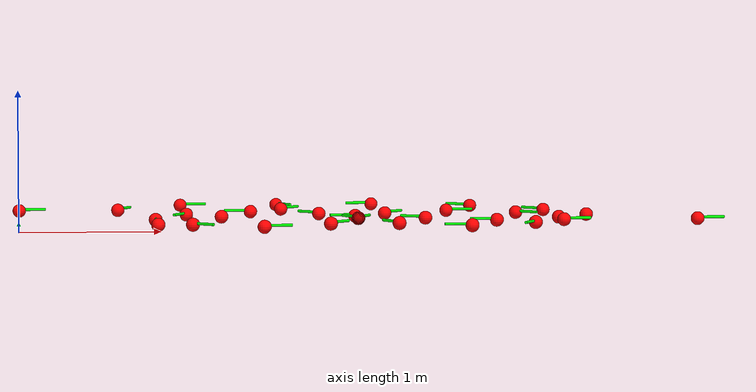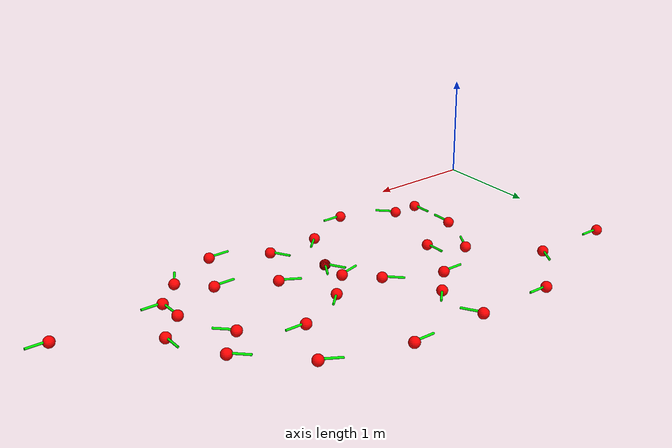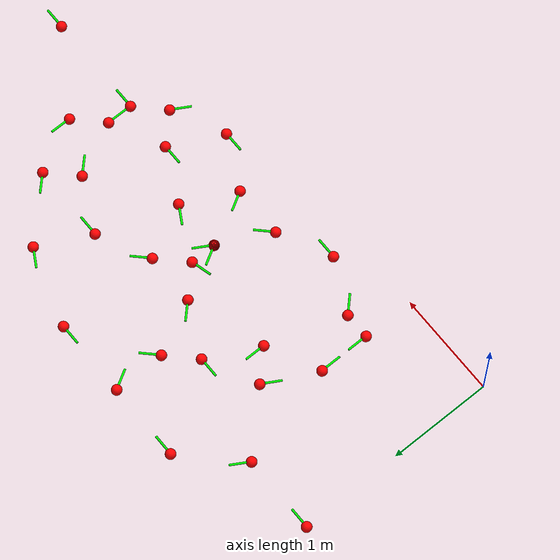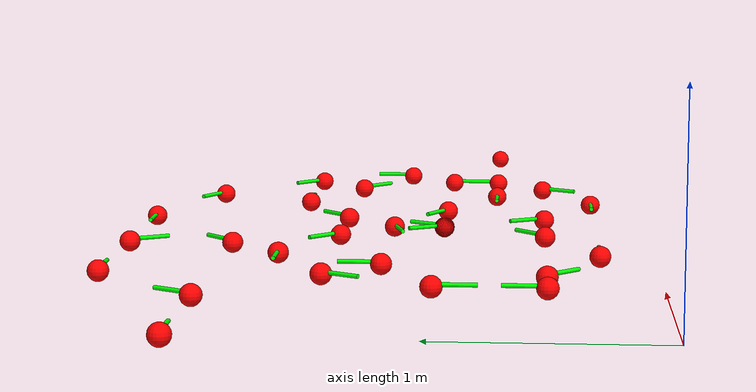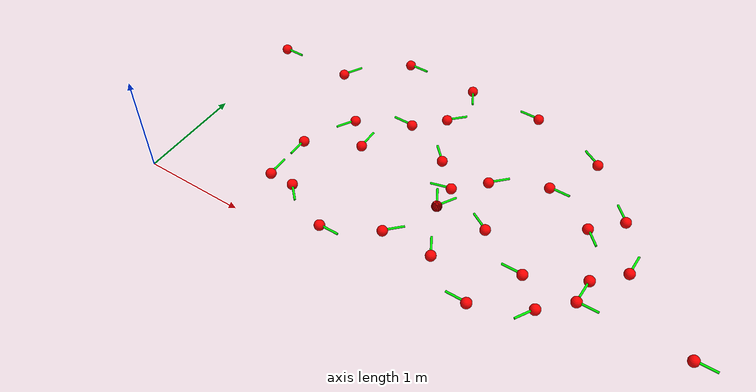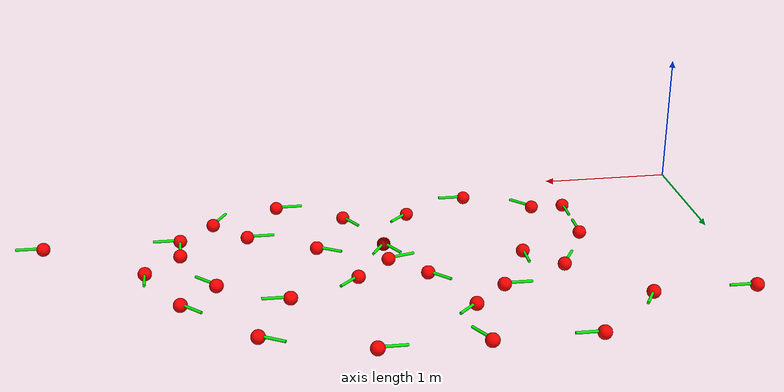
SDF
<?xml version="1.0" ?>
<sdf version="1.6">
  <model name="path_waypoints">
    <static>true</static>

    <link name="waypoint_0">
      <pose>1.0 1.0 0.01 0 0 -1.5707963267948966</pose>
      <visual name="dot">
        <geometry><sphere><radius>0.05</radius></sphere></geometry>
        <material>
          <ambient>1 0 0 1</ambient>
          <diffuse>1 0 0 1</diffuse>
        </material>
      </visual>
      <visual name="arrow">
        <pose>0.1 0 0.01 0 1.5707 0</pose>
        <geometry><cylinder><radius>0.01</radius><length>0.2</length></cylinder></geometry>
        <material>
          <ambient>0 1 0 1</ambient>
          <diffuse>0 1 0 1</diffuse>
        </material>
      </visual>
    </link>
    <link name="waypoint_1">
      <pose>1.25 0.5 0.01 0 0 -0.7853981633974483</pose>
      <visual name="dot">
        <geometry><sphere><radius>0.05</radius></sphere></geometry>
        <material>
          <ambient>1 0 0 1</ambient>
          <diffuse>1 0 0 1</diffuse>
        </material>
      </visual>
      <visual name="arrow">
        <pose>0.1 0 0.01 0 1.5707 0</pose>
        <geometry><cylinder><radius>0.01</radius><length>0.2</length></cylinder></geometry>
        <material>
          <ambient>0 1 0 1</ambient>
          <diffuse>0 1 0 1</diffuse>
        </material>
      </visual>
    </link>
    <link name="waypoint_2">
      <pose>1.75 0.25 0.01 0 0 0.0</pose>
      <visual name="dot">
        <geometry><sphere><radius>0.05</radius></sphere></geometry>
        <material>
          <ambient>1 0 0 1</ambient>
          <diffuse>1 0 0 1</diffuse>
        </material>
      </visual>
      <visual name="arrow">
        <pose>0.1 0 0.01 0 1.5707 0</pose>
        <geometry><cylinder><radius>0.01</radius><length>0.2</length></cylinder></geometry>
        <material>
          <ambient>0 1 0 1</ambient>
          <diffuse>0 1 0 1</diffuse>
        </material>
      </visual>
    </link>
    <link name="waypoint_3">
      <pose>2.25 0.5 0.01 0 0 0.7853981633974483</pose>
      <visual name="dot">
        <geometry><sphere><radius>0.05</radius></sphere></geometry>
        <material>
          <ambient>1 0 0 1</ambient>
          <diffuse>1 0 0 1</diffuse>
        </material>
      </visual>
      <visual name="arrow">
        <pose>0.1 0 0.01 0 1.5707 0</pose>
        <geometry><cylinder><radius>0.01</radius><length>0.2</length></cylinder></geometry>
        <material>
          <ambient>0 1 0 1</ambient>
          <diffuse>0 1 0 1</diffuse>
        </material>
      </visual>
    </link>
    <link name="waypoint_4">
      <pose>2.5 1.0 0.01 0 0 1.0471975511965976</pose>
      <visual name="dot">
        <geometry><sphere><radius>0.05</radius></sphere></geometry>
        <material>
          <ambient>1 0 0 1</ambient>
          <diffuse>1 0 0 1</diffuse>
        </material>
      </visual>
      <visual name="arrow">
        <pose>0.1 0 0.01 0 1.5707 0</pose>
        <geometry><cylinder><radius>0.01</radius><length>0.2</length></cylinder></geometry>
        <material>
          <ambient>0 1 0 1</ambient>
          <diffuse>0 1 0 1</diffuse>
        </material>
      </visual>
    </link>
    <link name="waypoint_5">
      <pose>2.75 1.5 0.01 0 0 0.7853981633974483</pose>
      <visual name="dot">
        <geometry><sphere><radius>0.05</radius></sphere></geometry>
        <material>
          <ambient>1 0 0 1</ambient>
          <diffuse>1 0 0 1</diffuse>
        </material>
      </visual>
      <visual name="arrow">
        <pose>0.1 0 0.01 0 1.5707 0</pose>
        <geometry><cylinder><radius>0.01</radius><length>0.2</length></cylinder></geometry>
        <material>
          <ambient>0 1 0 1</ambient>
          <diffuse>0 1 0 1</diffuse>
        </material>
      </visual>
    </link>
    <link name="waypoint_6">
      <pose>3.25 1.75 0.01 0 0 0.0</pose>
      <visual name="dot">
        <geometry><sphere><radius>0.05</radius></sphere></geometry>
        <material>
          <ambient>1 0 0 1</ambient>
          <diffuse>1 0 0 1</diffuse>
        </material>
      </visual>
      <visual name="arrow">
        <pose>0.1 0 0.01 0 1.5707 0</pose>
        <geometry><cylinder><radius>0.01</radius><length>0.2</length></cylinder></geometry>
        <material>
          <ambient>0 1 0 1</ambient>
          <diffuse>0 1 0 1</diffuse>
        </material>
      </visual>
    </link>
    <link name="waypoint_7">
      <pose>3.75 1.5 0.01 0 0 -0.7853981633974483</pose>
      <visual name="dot">
        <geometry><sphere><radius>0.05</radius></sphere></geometry>
        <material>
          <ambient>1 0 0 1</ambient>
          <diffuse>1 0 0 1</diffuse>
        </material>
      </visual>
      <visual name="arrow">
        <pose>0.1 0 0.01 0 1.5707 0</pose>
        <geometry><cylinder><radius>0.01</radius><length>0.2</length></cylinder></geometry>
        <material>
          <ambient>0 1 0 1</ambient>
          <diffuse>0 1 0 1</diffuse>
        </material>
      </visual>
    </link>
    <link name="waypoint_8">
      <pose>4.0 1.0 0.01 0 0 -1.5707963267948966</pose>
      <visual name="dot">
        <geometry><sphere><radius>0.05</radius></sphere></geometry>
        <material>
          <ambient>1 0 0 1</ambient>
          <diffuse>1 0 0 1</diffuse>
        </material>
      </visual>
      <visual name="arrow">
        <pose>0.1 0 0.01 0 1.5707 0</pose>
        <geometry><cylinder><radius>0.01</radius><length>0.2</length></cylinder></geometry>
        <material>
          <ambient>0 1 0 1</ambient>
          <diffuse>0 1 0 1</diffuse>
        </material>
      </visual>
    </link>
    <link name="waypoint_9">
      <pose>3.75 0.5 0.01 0 0 -2.0943951023931953</pose>
      <visual name="dot">
        <geometry><sphere><radius>0.05</radius></sphere></geometry>
        <material>
          <ambient>1 0 0 1</ambient>
          <diffuse>1 0 0 1</diffuse>
        </material>
      </visual>
      <visual name="arrow">
        <pose>0.1 0 0.01 0 1.5707 0</pose>
        <geometry><cylinder><radius>0.01</radius><length>0.2</length></cylinder></geometry>
        <material>
          <ambient>0 1 0 1</ambient>
          <diffuse>0 1 0 1</diffuse>
        </material>
      </visual>
    </link>
    <link name="waypoint_10">
      <pose>3.25 0.25 0.01 0 0 3.141592653589793</pose>
      <visual name="dot">
        <geometry><sphere><radius>0.05</radius></sphere></geometry>
        <material>
          <ambient>1 0 0 1</ambient>
          <diffuse>1 0 0 1</diffuse>
        </material>
      </visual>
      <visual name="arrow">
        <pose>0.1 0 0.01 0 1.5707 0</pose>
        <geometry><cylinder><radius>0.01</radius><length>0.2</length></cylinder></geometry>
        <material>
          <ambient>0 1 0 1</ambient>
          <diffuse>0 1 0 1</diffuse>
        </material>
      </visual>
    </link>
    <link name="waypoint_11">
      <pose>2.75 0.5 0.01 0 0 2.0943951023931953</pose>
      <visual name="dot">
        <geometry><sphere><radius>0.05</radius></sphere></geometry>
        <material>
          <ambient>1 0 0 1</ambient>
          <diffuse>1 0 0 1</diffuse>
        </material>
      </visual>
      <visual name="arrow">
        <pose>0.1 0 0.01 0 1.5707 0</pose>
        <geometry><cylinder><radius>0.01</radius><length>0.2</length></cylinder></geometry>
        <material>
          <ambient>0 1 0 1</ambient>
          <diffuse>0 1 0 1</diffuse>
        </material>
      </visual>
    </link>
    <link name="waypoint_12">
      <pose>2.5 1.0 0.01 0 0 2.0943951023931953</pose>
      <visual name="dot">
        <geometry><sphere><radius>0.05</radius></sphere></geometry>
        <material>
          <ambient>1 0 0 1</ambient>
          <diffuse>1 0 0 1</diffuse>
        </material>
      </visual>
      <visual name="arrow">
        <pose>0.1 0 0.01 0 1.5707 0</pose>
        <geometry><cylinder><radius>0.01</radius><length>0.2</length></cylinder></geometry>
        <material>
          <ambient>0 1 0 1</ambient>
          <diffuse>0 1 0 1</diffuse>
        </material>
      </visual>
    </link>
    <link name="waypoint_13">
      <pose>2.25 1.5 0.01 0 0 2.356194490192345</pose>
      <visual name="dot">
        <geometry><sphere><radius>0.05</radius></sphere></geometry>
        <material>
          <ambient>1 0 0 1</ambient>
          <diffuse>1 0 0 1</diffuse>
        </material>
      </visual>
      <visual name="arrow">
        <pose>0.1 0 0.01 0 1.5707 0</pose>
        <geometry><cylinder><radius>0.01</radius><length>0.2</length></cylinder></geometry>
        <material>
          <ambient>0 1 0 1</ambient>
          <diffuse>0 1 0 1</diffuse>
        </material>
      </visual>
    </link>
    <link name="waypoint_14">
      <pose>1.75 1.75 0.01 0 0 3.141592653589793</pose>
      <visual name="dot">
        <geometry><sphere><radius>0.05</radius></sphere></geometry>
        <material>
          <ambient>1 0 0 1</ambient>
          <diffuse>1 0 0 1</diffuse>
        </material>
      </visual>
      <visual name="arrow">
        <pose>0.1 0 0.01 0 1.5707 0</pose>
        <geometry><cylinder><radius>0.01</radius><length>0.2</length></cylinder></geometry>
        <material>
          <ambient>0 1 0 1</ambient>
          <diffuse>0 1 0 1</diffuse>
        </material>
      </visual>
    </link>
    <link name="waypoint_15">
      <pose>1.25 1.5 0.01 0 0 -2.0943951023931953</pose>
      <visual name="dot">
        <geometry><sphere><radius>0.05</radius></sphere></geometry>
        <material>
          <ambient>1 0 0 1</ambient>
          <diffuse>1 0 0 1</diffuse>
        </material>
      </visual>
      <visual name="arrow">
        <pose>0.1 0 0.01 0 1.5707 0</pose>
        <geometry><cylinder><radius>0.01</radius><length>0.2</length></cylinder></geometry>
        <material>
          <ambient>0 1 0 1</ambient>
          <diffuse>0 1 0 1</diffuse>
        </material>
      </visual>
    </link>
    <link name="waypoint_16">
      <pose>1.0 1.0 0.01 0 0 -1.5707963267948966</pose>
      <visual name="dot">
        <geometry><sphere><radius>0.05</radius></sphere></geometry>
        <material>
          <ambient>1 0 0 1</ambient>
          <diffuse>1 0 0 1</diffuse>
        </material>
      </visual>
      <visual name="arrow">
        <pose>0.1 0 0.01 0 1.5707 0</pose>
        <geometry><cylinder><radius>0.01</radius><length>0.2</length></cylinder></geometry>
        <material>
          <ambient>0 1 0 1</ambient>
          <diffuse>0 1 0 1</diffuse>
        </material>
      </visual>
    </link>
    <link name="waypoint_17">
      <pose>1.0 0.5 0.01 0 0 1.5707963267948966</pose>
      <visual name="dot">
        <geometry><sphere><radius>0.05</radius></sphere></geometry>
        <material>
          <ambient>1 0 0 1</ambient>
          <diffuse>1 0 0 1</diffuse>
        </material>
      </visual>
      <visual name="arrow">
        <pose>0.1 0 0.01 0 1.5707 0</pose>
        <geometry><cylinder><radius>0.01</radius><length>0.2</length></cylinder></geometry>
        <material>
          <ambient>0 1 0 1</ambient>
          <diffuse>0 1 0 1</diffuse>
        </material>
      </visual>
    </link>
    <link name="waypoint_18">
      <pose>0.75 2.0 0.01 0 0 1.0471975511965976</pose>
      <visual name="dot">
        <geometry><sphere><radius>0.05</radius></sphere></geometry>
        <material>
          <ambient>1 0 0 1</ambient>
          <diffuse>1 0 0 1</diffuse>
        </material>
      </visual>
      <visual name="arrow">
        <pose>0.1 0 0.01 0 1.5707 0</pose>
        <geometry><cylinder><radius>0.01</radius><length>0.2</length></cylinder></geometry>
        <material>
          <ambient>0 1 0 1</ambient>
          <diffuse>0 1 0 1</diffuse>
        </material>
      </visual>
    </link>
    <link name="waypoint_19">
      <pose>1.25 2.5 0.01 0 0 0.0</pose>
      <visual name="dot">
        <geometry><sphere><radius>0.05</radius></sphere></geometry>
        <material>
          <ambient>1 0 0 1</ambient>
          <diffuse>1 0 0 1</diffuse>
        </material>
      </visual>
      <visual name="arrow">
        <pose>0.1 0 0.01 0 1.5707 0</pose>
        <geometry><cylinder><radius>0.01</radius><length>0.2</length></cylinder></geometry>
        <material>
          <ambient>0 1 0 1</ambient>
          <diffuse>0 1 0 1</diffuse>
        </material>
      </visual>
    </link>
    <link name="waypoint_20">
      <pose>2.0 2.0 0.01 0 0 0.7853981633974483</pose>
      <visual name="dot">
        <geometry><sphere><radius>0.05</radius></sphere></geometry>
        <material>
          <ambient>1 0 0 1</ambient>
          <diffuse>1 0 0 1</diffuse>
        </material>
      </visual>
      <visual name="arrow">
        <pose>0.1 0 0.01 0 1.5707 0</pose>
        <geometry><cylinder><radius>0.01</radius><length>0.2</length></cylinder></geometry>
        <material>
          <ambient>0 1 0 1</ambient>
          <diffuse>0 1 0 1</diffuse>
        </material>
      </visual>
    </link>
    <link name="waypoint_21">
      <pose>2.0 2.5 0.01 0 0 -1.0471975511965976</pose>
      <visual name="dot">
        <geometry><sphere><radius>0.05</radius></sphere></geometry>
        <material>
          <ambient>1 0 0 1</ambient>
          <diffuse>1 0 0 1</diffuse>
        </material>
      </visual>
      <visual name="arrow">
        <pose>0.1 0 0.01 0 1.5707 0</pose>
        <geometry><cylinder><radius>0.01</radius><length>0.2</length></cylinder></geometry>
        <material>
          <ambient>0 1 0 1</ambient>
          <diffuse>0 1 0 1</diffuse>
        </material>
      </visual>
    </link>
    <link name="waypoint_22">
      <pose>2.75 2.5 0.01 0 0 -3.141592653589793</pose>
      <visual name="dot">
        <geometry><sphere><radius>0.05</radius></sphere></geometry>
        <material>
          <ambient>1 0 0 1</ambient>
          <diffuse>1 0 0 1</diffuse>
        </material>
      </visual>
      <visual name="arrow">
        <pose>0.1 0 0.01 0 1.5707 0</pose>
        <geometry><cylinder><radius>0.01</radius><length>0.2</length></cylinder></geometry>
        <material>
          <ambient>0 1 0 1</ambient>
          <diffuse>0 1 0 1</diffuse>
        </material>
      </visual>
    </link>
    <link name="waypoint_23">
      <pose>3.5 2.25 0.01 0 0 2.6179938779914944</pose>
      <visual name="dot">
        <geometry><sphere><radius>0.05</radius></sphere></geometry>
        <material>
          <ambient>1 0 0 1</ambient>
          <diffuse>1 0 0 1</diffuse>
        </material>
      </visual>
      <visual name="arrow">
        <pose>0.1 0 0.01 0 1.5707 0</pose>
        <geometry><cylinder><radius>0.01</radius><length>0.2</length></cylinder></geometry>
        <material>
          <ambient>0 1 0 1</ambient>
          <diffuse>0 1 0 1</diffuse>
        </material>
      </visual>
    </link>
    <link name="waypoint_24">
      <pose>4.0 1.75 0.01 0 0 2.356194490192345</pose>
      <visual name="dot">
        <geometry><sphere><radius>0.05</radius></sphere></geometry>
        <material>
          <ambient>1 0 0 1</ambient>
          <diffuse>1 0 0 1</diffuse>
        </material>
      </visual>
      <visual name="arrow">
        <pose>0.1 0 0.01 0 1.5707 0</pose>
        <geometry><cylinder><radius>0.01</radius><length>0.2</length></cylinder></geometry>
        <material>
          <ambient>0 1 0 1</ambient>
          <diffuse>0 1 0 1</diffuse>
        </material>
      </visual>
    </link>
    <link name="waypoint_25">
      <pose>4.25 1.25 0.01 0 0 1.5707963267948966</pose>
      <visual name="dot">
        <geometry><sphere><radius>0.05</radius></sphere></geometry>
        <material>
          <ambient>1 0 0 1</ambient>
          <diffuse>1 0 0 1</diffuse>
        </material>
      </visual>
      <visual name="arrow">
        <pose>0.1 0 0.01 0 1.5707 0</pose>
        <geometry><cylinder><radius>0.01</radius><length>0.2</length></cylinder></geometry>
        <material>
          <ambient>0 1 0 1</ambient>
          <diffuse>0 1 0 1</diffuse>
        </material>
      </visual>
    </link>
    <link name="waypoint_26">
      <pose>5.0 0.75 0.01 0 0 0.0</pose>
      <visual name="dot">
        <geometry><sphere><radius>0.05</radius></sphere></geometry>
        <material>
          <ambient>1 0 0 1</ambient>
          <diffuse>1 0 0 1</diffuse>
        </material>
      </visual>
      <visual name="arrow">
        <pose>0.1 0 0.01 0 1.5707 0</pose>
        <geometry><cylinder><radius>0.01</radius><length>0.2</length></cylinder></geometry>
        <material>
          <ambient>0 1 0 1</ambient>
          <diffuse>0 1 0 1</diffuse>
        </material>
      </visual>
    </link>
    <link name="waypoint_27">
      <pose>4.0 0.75 0.01 0 0 0.0</pose>
      <visual name="dot">
        <geometry><sphere><radius>0.05</radius></sphere></geometry>
        <material>
          <ambient>1 0 0 1</ambient>
          <diffuse>1 0 0 1</diffuse>
        </material>
      </visual>
      <visual name="arrow">
        <pose>0.1 0 0.01 0 1.5707 0</pose>
        <geometry><cylinder><radius>0.01</radius><length>0.2</length></cylinder></geometry>
        <material>
          <ambient>0 1 0 1</ambient>
          <diffuse>0 1 0 1</diffuse>
        </material>
      </visual>
    </link>
    <link name="waypoint_28">
      <pose>3.5 0.75 0.01 0 0 3.141592653589793</pose>
      <visual name="dot">
        <geometry><sphere><radius>0.05</radius></sphere></geometry>
        <material>
          <ambient>1 0 0 1</ambient>
          <diffuse>1 0 0 1</diffuse>
        </material>
      </visual>
      <visual name="arrow">
        <pose>0.1 0 0.01 0 1.5707 0</pose>
        <geometry><cylinder><radius>0.01</radius><length>0.2</length></cylinder></geometry>
        <material>
          <ambient>0 1 0 1</ambient>
          <diffuse>0 1 0 1</diffuse>
        </material>
      </visual>
    </link>
    <link name="waypoint_29">
      <pose>3.0 1.0 0.01 0 0 2.6179938779914944</pose>
      <visual name="dot">
        <geometry><sphere><radius>0.05</radius></sphere></geometry>
        <material>
          <ambient>1 0 0 1</ambient>
          <diffuse>1 0 0 1</diffuse>
        </material>
      </visual>
      <visual name="arrow">
        <pose>0.1 0 0.01 0 1.5707 0</pose>
        <geometry><cylinder><radius>0.01</radius><length>0.2</length></cylinder></geometry>
        <material>
          <ambient>0 1 0 1</ambient>
          <diffuse>0 1 0 1</diffuse>
        </material>
      </visual>
    </link>
    <link name="waypoint_30">
      <pose>2.5 1.25 0.01 0 0 -2.8797932657906435</pose>
      <visual name="dot">
        <geometry><sphere><radius>0.05</radius></sphere></geometry>
        <material>
          <ambient>1 0 0 1</ambient>
          <diffuse>1 0 0 1</diffuse>
        </material>
      </visual>
      <visual name="arrow">
        <pose>0.1 0 0.01 0 1.5707 0</pose>
        <geometry><cylinder><radius>0.01</radius><length>0.2</length></cylinder></geometry>
        <material>
          <ambient>0 1 0 1</ambient>
          <diffuse>0 1 0 1</diffuse>
        </material>
      </visual>
    </link>
    <link name="waypoint_31">
      <pose>1.5 1.25 0.01 0 0 1.5707963267948966</pose>
      <visual name="dot">
        <geometry><sphere><radius>0.05</radius></sphere></geometry>
        <material>
          <ambient>1 0 0 1</ambient>
          <diffuse>1 0 0 1</diffuse>
        </material>
      </visual>
      <visual name="arrow">
        <pose>0.1 0 0.01 0 1.5707 0</pose>
        <geometry><cylinder><radius>0.01</radius><length>0.2</length></cylinder></geometry>
        <material>
          <ambient>0 1 0 1</ambient>
          <diffuse>0 1 0 1</diffuse>
        </material>
      </visual>
    </link>
    <link name="waypoint_32">
      <pose>0.0 2.0 0.01 0 0 0.0</pose>
      <visual name="dot">
        <geometry><sphere><radius>0.05</radius></sphere></geometry>
        <material>
          <ambient>1 0 0 1</ambient>
          <diffuse>1 0 0 1</diffuse>
        </material>
      </visual>
      <visual name="arrow">
        <pose>0.1 0 0.01 0 1.5707 0</pose>
        <geometry><cylinder><radius>0.01</radius><length>0.2</length></cylinder></geometry>
        <material>
          <ambient>0 1 0 1</ambient>
          <diffuse>0 1 0 1</diffuse>
        </material>
      </visual>
    </link>
  </model>
</sdf>
